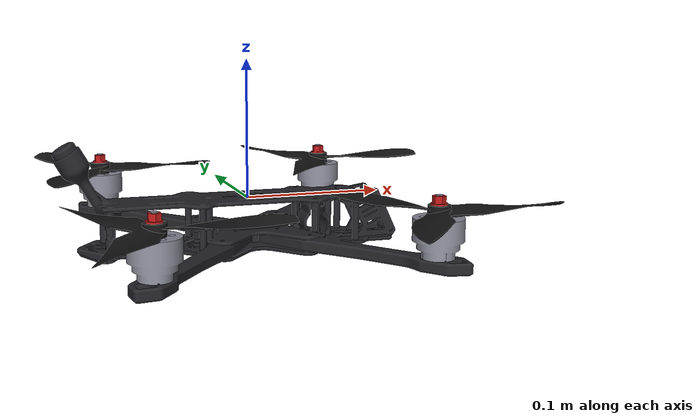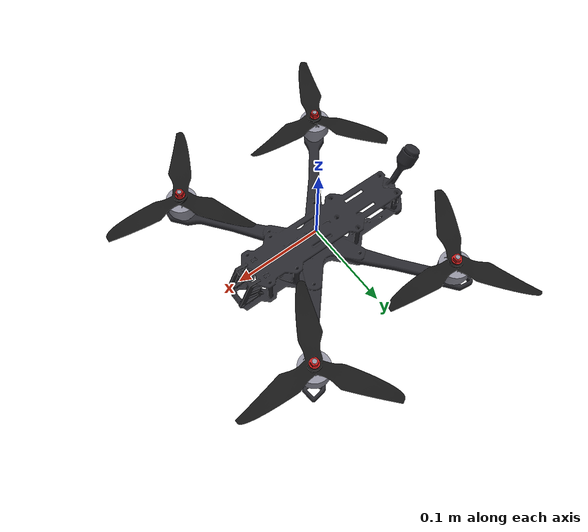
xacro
<?xml version="1.0"?>
<robot name="jeno7" xmlns:xacro="http://www.ros.org/wiki/xacro">

  <xacro:include filename="$(find my_drone)/urdf/quad_mesh_common.xacro"/>
  <xacro:include filename="$(find my_drone)/urdf/jeno7_params.xacro"/>
  <xacro:include filename="$(find my_drone)/urdf/quad_gazebo.xacro"/>

  <material name="frame_carbon"><color rgba="0.15 0.15 0.17 1.0"/></material>

  <link name="base_link">
    <inertial>
      <origin xyz="0 0 0" rpy="0 0 0"/>
      <mass value="${mass_base}"/>
      <inertia ixx="${body_ixx}" ixy="0.0" ixz="0.0"
               iyy="${body_iyy}" iyz="0.0"
               izz="${body_izz}"/>
    </inertial>

    <visual>
      <origin xyz="${cad_offset}" rpy="0 0 ${-pi/2}"/>
      <geometry>
        <mesh filename="package://my_drone/meshes/jeno7/Jeno7_frame.stl" scale="${mesh_scale}"/>
      </geometry>
      <material name="frame_carbon"/>
    </visual>
    <xacro:quad_motor_visuals/>

    <!-- Plate stack (CAD bottom plate 97 x 217 mm, z 0-40 mm). -->
    <collision>
      <origin xyz="0 0 -0.0190" rpy="0 0 0"/>
      <geometry><box size="0.217 0.097 0.040"/></geometry>
    </collision>
  </link>

  <xacro:quad_rotors/>

  <xacro:quad_gazebo_plugins/>

</robot>

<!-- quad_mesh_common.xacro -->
<robot xmlns:xacro="http://www.ros.org/wiki/xacro">

  <xacro:property name="mesh_scale" value="0.001 0.001 0.001"/>
  <xacro:property name="prop_mesh_h" value="0.0084"/>  <!-- prop hub height -->

  <xacro:property name="motor_constant"       value="3.7e-6"/>
  <xacro:property name="moment_constant"      value="0.016"/>
  <xacro:property name="max_rot_velocity"     value="2300"/>
  <xacro:property name="rotor_drag_coeff"     value="8.06428e-05"/>
  <xacro:property name="rolling_moment_coeff" value="1.0e-6"/>
  <!-- Heavier 7" props spool slower than the F450's 8045s. -->
  <xacro:property name="time_constant_up"     value="0.020"/>
  <xacro:property name="time_constant_down"   value="0.035"/>

  <!-- Prop 9.4 g + M5 flange nut 2 g; 180 mm diameter. -->
  <xacro:property name="mass_rotor"   value="0.0114"/>
  <xacro:property name="prop_radius"  value="0.0901"/>

  <xacro:property name="rotor_slowdown_sim" value="40"/>

  <material name="prop_black"><color rgba="0.08 0.08 0.08 1.0"/></material>
  <material name="motor_grey"><color rgba="0.55 0.55 0.60 1.0"/></material>
  <material name="nut_red">   <color rgba="0.75 0.10 0.10 1.0"/></material>

  <!-- spin: "cw" or "ccw" seen from above; selects the matching prop shape.
       x y z: rotor axis at the bottom of the prop hub, relative to the CoM. -->
  <xacro:macro name="mesh_rotor" params="number x y z spin">
    <link name="rotor_${number}">
      <inertial>
        <origin xyz="0 0 ${prop_mesh_h/2}" rpy="0 0 0"/>
        <mass value="${mass_rotor}"/>
        <inertia ixx="${mass_rotor * prop_radius * prop_radius / 4}" ixy="0.0" ixz="0.0"
                 iyy="${mass_rotor * prop_radius * prop_radius / 4}" iyz="0.0"
                 izz="${mass_rotor * prop_radius * prop_radius / 2}"/>
      </inertial>
      <visual>
        <geometry>
          <mesh filename="package://my_drone/meshes/common/Prop_7040-3_${spin}.stl" scale="${mesh_scale}"/>
        </geometry>
        <material name="prop_black"/>
      </visual>
      <visual>
        <origin xyz="0 0 ${prop_mesh_h}" rpy="0 0 0"/>
        <geometry>
          <mesh filename="package://my_drone/meshes/common/Nut_M5_flange.stl" scale="${mesh_scale}"/>
        </geometry>
        <material name="nut_red"/>
      </visual>
      <!-- No collision on the props, same as the F450. -->
    </link>
    <joint name="rotor_${number}_joint" type="continuous">
      <parent link="base_link"/>
      <child  link="rotor_${number}"/>
      <origin xyz="${x} ${y} ${z}" rpy="0 0 0"/>
      <axis xyz="0 0 1"/>
      <limit effort="100.0" velocity="${max_rot_velocity}"/>
      <dynamics damping="0.0" friction="0.0"/>
    </joint>
  </xacro:macro>

  <!-- Motor can on base_link; z is the motor base (mounting face). -->
  <xacro:macro name="motor_visual" params="x y z">
    <visual>
      <origin xyz="${x} ${y} ${z}" rpy="0 0 0"/>
      <geometry>
        <mesh filename="package://my_drone/meshes/common/Motor_2807SL.stl" scale="${mesh_scale}"/>
      </geometry>
      <material name="motor_grey"/>
    </visual>
  </xacro:macro>

  <!-- The four rotors + motor cans for a quad, from per-drone properties:
       rotor_x_front / rotor_x_rear / rotor_y / rotor_z / motor_base_z. -->
  <xacro:macro name="quad_rotors" params="">
    <xacro:mesh_rotor number="0" x="${rotor_x_front}" y="${-rotor_y}" z="${rotor_z}" spin="ccw"/>  <!-- FR -->
    <xacro:mesh_rotor number="1" x="${rotor_x_rear}"  y="${ rotor_y}" z="${rotor_z}" spin="ccw"/>  <!-- RL -->
    <xacro:mesh_rotor number="2" x="${rotor_x_front}" y="${ rotor_y}" z="${rotor_z}" spin="cw"/>   <!-- FL -->
    <xacro:mesh_rotor number="3" x="${rotor_x_rear}"  y="${-rotor_y}" z="${rotor_z}" spin="cw"/>   <!-- RR -->
  </xacro:macro>

  <xacro:macro name="quad_motor_visuals" params="">
    <xacro:motor_visual x="${rotor_x_front}" y="${-rotor_y}" z="${motor_base_z}"/>
    <xacro:motor_visual x="${rotor_x_rear}"  y="${ rotor_y}" z="${motor_base_z}"/>
    <xacro:motor_visual x="${rotor_x_front}" y="${ rotor_y}" z="${motor_base_z}"/>
    <xacro:motor_visual x="${rotor_x_rear}"  y="${-rotor_y}" z="${motor_base_z}"/>
  </xacro:macro>

</robot>

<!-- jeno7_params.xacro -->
<robot xmlns:xacro="http://www.ros.org/wiki/xacro">

  <!-- ==================== MASS BUDGET (kg) ==================== -->
  <!-- Arms 76 + plates 64 + blocks/side plates 10 (PAHT-CF),
       10+2 alu standoffs 12, TPU antenna mount/tube/bumper 11 = 173 g -->
  <!-- 4 x 2807 motor incl. leads                     = 220 g -->
  <!-- 4 x (7040x3 prop + M5 nut)                     =  46 g -->
  <!-- 6S 1800 mAh LiPo on the top plate              = 290 g -->
  <!-- FC+ESC 35, RX/GPS/VTX/cam 40, wiring 30, screws 20 = 125 g -->
  <!--                                     All-up:   ~= 854 g -->
  <xacro:property name="mass_total" value="0.854"/>
  <xacro:property name="mass_base"  value="${mass_total - 4*mass_rotor}"/>

  <!-- About the CoM (base_link origin), in ROS axes. Roll inertia is the
       larger one because the arms spread wider sideways than fore-aft. -->
  <xacro:property name="body_ixx" value="0.00483"/>
  <xacro:property name="body_iyy" value="0.00377"/>
  <xacro:property name="body_izz" value="0.00781"/>

  <!-- ==================== GEOMETRY (m, from the CoM) ==================== -->
  <!-- CAD front is +Y: the frame mesh is yawed -90 deg, then shifted so the
       CoM (CAD 0, 12.7, 39.1 mm) lands on base_link. -->
  <xacro:property name="cad_offset"    value="-0.0127 0 -0.0391"/>
  <xacro:property name="rotor_x_front" value=" 0.0951"/>
  <xacro:property name="rotor_x_rear"  value="-0.0896"/>
  <xacro:property name="rotor_y"       value=" 0.1196"/>
  <xacro:property name="rotor_z"       value=" 0.0033"/>   <!-- prop hub bottom -->
  <xacro:property name="motor_base_z"  value="-0.0234"/>

  <xacro:property name="velocity_gain"     value="2.56 2.56 2.56"/>
  <xacro:property name="attitude_gain"     value="0.99 0.77 0.061"/>
  <xacro:property name="angular_rate_gain" value="0.197 0.154 0.073"/>
  <xacro:property name="max_linear_accel"  value="3 3 3"/>
  <xacro:property name="max_linear_vel"    value="5 5 3"/>
  <xacro:property name="max_angular_vel"   value="3 3 2"/>

  <xacro:property name="robot_ns" value="jeno7"/>

</robot>

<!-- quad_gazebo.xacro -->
<robot xmlns:xacro="http://www.ros.org/wiki/xacro">

  <xacro:arg name="controller" default="custom"/>

  <!-- ============ Motor model, instantiated once per rotor ============ -->
  <xacro:macro name="motor_plugin" params="number direction">
    <gazebo>
      <plugin filename="gz-sim-multicopter-motor-model-system"
              name="gz::sim::systems::MulticopterMotorModel">
        <robotNamespace>${robot_ns}</robotNamespace>
        <jointName>rotor_${number}_joint</jointName>
        <linkName>rotor_${number}</linkName>
        <turningDirection>${direction}</turningDirection>
        <timeConstantUp>${time_constant_up}</timeConstantUp>
        <timeConstantDown>${time_constant_down}</timeConstantDown>
        <maxRotVelocity>${max_rot_velocity}</maxRotVelocity>
        <motorConstant>${motor_constant}</motorConstant>
        <momentConstant>${moment_constant}</momentConstant>
        <commandSubTopic>gazebo/command/motor_speed</commandSubTopic>
        <motorNumber>${number}</motorNumber>
        <rotorDragCoefficient>${rotor_drag_coeff}</rotorDragCoefficient>
        <rollingMomentCoefficient>${rolling_moment_coeff}</rollingMomentCoefficient>
        <motorSpeedPubTopic>motor_speed/${number}</motorSpeedPubTopic>
        <rotorVelocitySlowdownSim>${rotor_slowdown_sim}</rotorVelocitySlowdownSim>
      </plugin>
    </gazebo>
  </xacro:macro>

  <!-- direction 1 == ccw, -1 == cw, and must agree with turningDirection above.
       Diagonally opposite rotors share a direction so yaw torque cancels. -->
  <xacro:macro name="rotor_config_entry" params="number dir">
    <rotor>
      <jointName>rotor_${number}_joint</jointName>
      <forceConstant>${motor_constant}</forceConstant>
      <momentConstant>${moment_constant}</momentConstant>
      <direction>${dir}</direction>
    </rotor>
  </xacro:macro>

  <xacro:macro name="quad_gazebo_plugins" params="">

    <xacro:motor_plugin number="0" direction="ccw"/>
    <xacro:motor_plugin number="1" direction="ccw"/>
    <xacro:motor_plugin number="2" direction="cw"/>
    <xacro:motor_plugin number="3" direction="cw"/>

    <quad_physics mass="${mass_total}"
                  ixx="${body_ixx}" iyy="${body_iyy}" izz="${body_izz}"
                  motor_constant="${motor_constant}"
                  moment_constant="${moment_constant}"
                  max_rot_velocity="${max_rot_velocity}">
      <rotor number="0" x="${rotor_x_front}" y="${-rotor_y}" direction="1"/>
      <rotor number="1" x="${rotor_x_rear}"  y="${ rotor_y}" direction="1"/>
      <rotor number="2" x="${rotor_x_front}" y="${ rotor_y}" direction="-1"/>
      <rotor number="3" x="${rotor_x_rear}"  y="${-rotor_y}" direction="-1"/>
    </quad_physics>

    <xacro:if value="${'$(arg controller)' == 'gz'}">
    <gazebo>
      <plugin filename="gz-sim-multicopter-control-system"
              name="gz::sim::systems::MulticopterVelocityControl">
        <robotNamespace>${robot_ns}</robotNamespace>
        <commandSubTopic>gazebo/command/twist</commandSubTopic>
        <enableSubTopic>enable</enableSubTopic>
        <comLinkName>base_link</comLinkName>

        <velocityGain>${velocity_gain}</velocityGain>
        <attitudeGain>${attitude_gain}</attitudeGain>
        <angularRateGain>${angular_rate_gain}</angularRateGain>

        <maximumLinearAcceleration>${max_linear_accel}</maximumLinearAcceleration>
        <maximumLinearVelocity>${max_linear_vel}</maximumLinearVelocity>
        <maximumAngularVelocity>${max_angular_vel}</maximumAngularVelocity>

        <rotorConfiguration>
          <xacro:rotor_config_entry number="0" dir="1"/>
          <xacro:rotor_config_entry number="1" dir="1"/>
          <xacro:rotor_config_entry number="2" dir="-1"/>
          <xacro:rotor_config_entry number="3" dir="-1"/>
        </rotorConfiguration>
      </plugin>
    </gazebo>
    </xacro:if>

    <!-- ============ Odometry, for RViz and for later navigation ============ -->
    <gazebo>
      <plugin filename="gz-sim-odometry-publisher-system"
              name="gz::sim::systems::OdometryPublisher">
        <odom_frame>odom</odom_frame>
        <robot_base_frame>base_link</robot_base_frame>
        <dimensions>3</dimensions>
        <odom_publish_frequency>50</odom_publish_frequency>
      </plugin>
    </gazebo>

    <!-- ============ Rotor joint states, so RViz can spin the props ============ -->
    <gazebo>
      <plugin filename="gz-sim-joint-state-publisher-system"
              name="gz::sim::systems::JointStatePublisher"/>
    </gazebo>

    <!-- ============ IMU, modelled on the BOM's MPU-6050 ============ -->
    <gazebo reference="base_link">
      <sensor name="imu_sensor" type="imu">
        <always_on>1</always_on>
        <update_rate>250</update_rate>
        <topic>imu</topic>
        <gz_frame_id>base_link</gz_frame_id>
        <imu>
          <angular_velocity>
            <x><noise type="gaussian"><mean>0</mean><stddev>0.009</stddev>
               <bias_mean>0.00075</bias_mean><bias_stddev>0.005</bias_stddev></noise></x>
            <y><noise type="gaussian"><mean>0</mean><stddev>0.009</stddev>
               <bias_mean>0.00075</bias_mean><bias_stddev>0.005</bias_stddev></noise></y>
            <z><noise type="gaussian"><mean>0</mean><stddev>0.009</stddev>
               <bias_mean>0.00075</bias_mean><bias_stddev>0.005</bias_stddev></noise></z>
          </angular_velocity>
          <linear_acceleration>
            <x><noise type="gaussian"><mean>0</mean><stddev>0.021</stddev>
               <bias_mean>0.05</bias_mean><bias_stddev>0.0075</bias_stddev></noise></x>
            <y><noise type="gaussian"><mean>0</mean><stddev>0.021</stddev>
               <bias_mean>0.05</bias_mean><bias_stddev>0.0075</bias_stddev></noise></y>
            <z><noise type="gaussian"><mean>0</mean><stddev>0.021</stddev>
               <bias_mean>0.05</bias_mean><bias_stddev>0.0075</bias_stddev></noise></z>
          </linear_acceleration>
        </imu>
      </sensor>
    </gazebo>

  </xacro:macro>
</robot>
